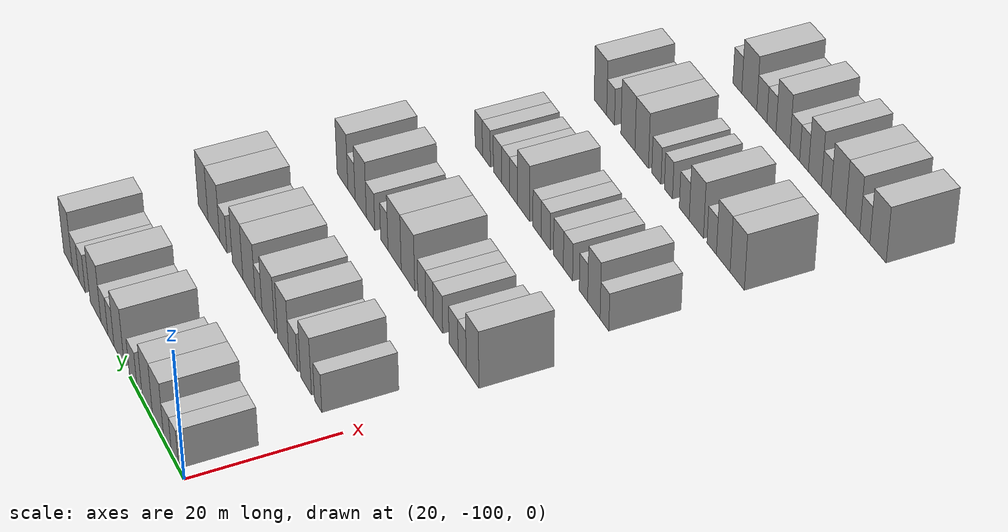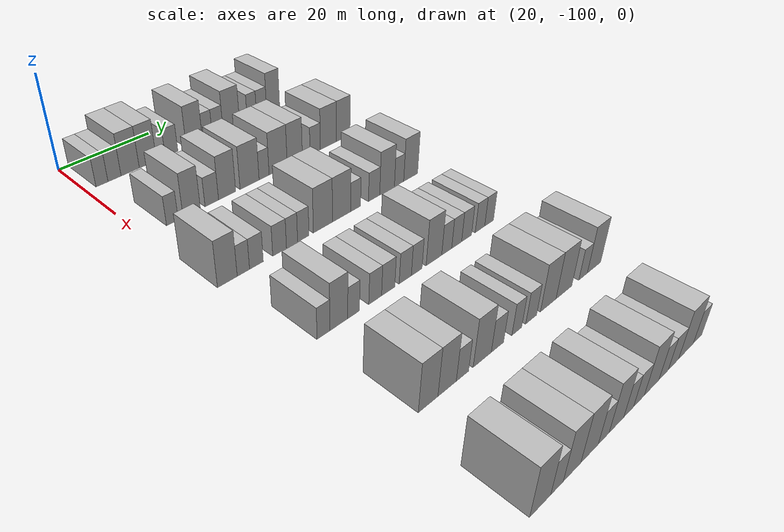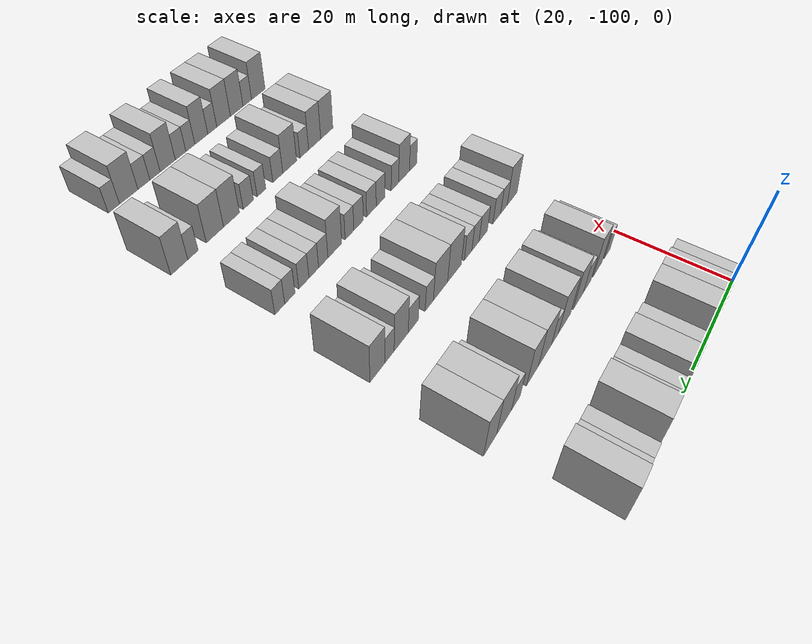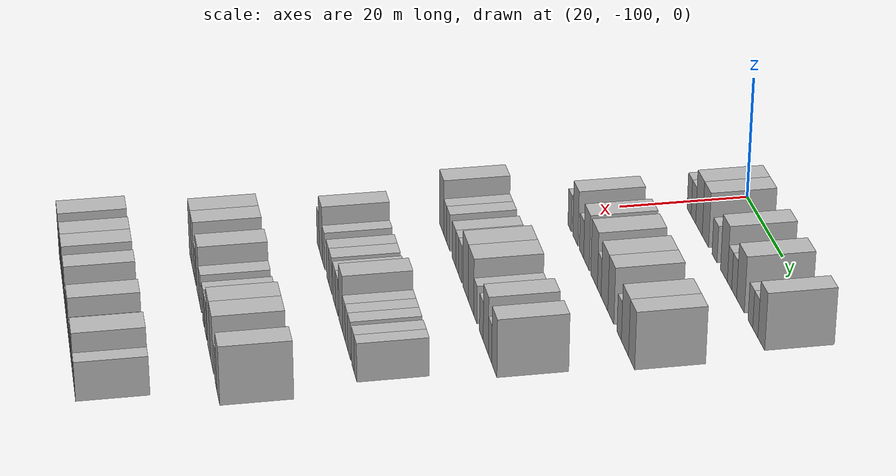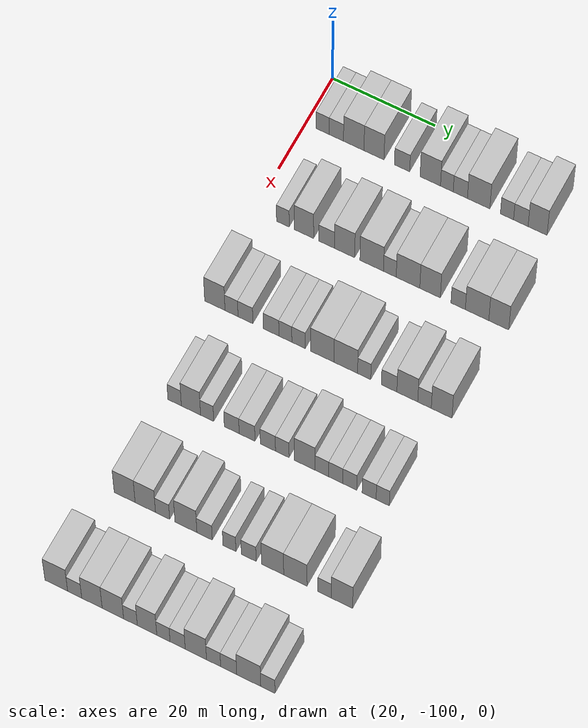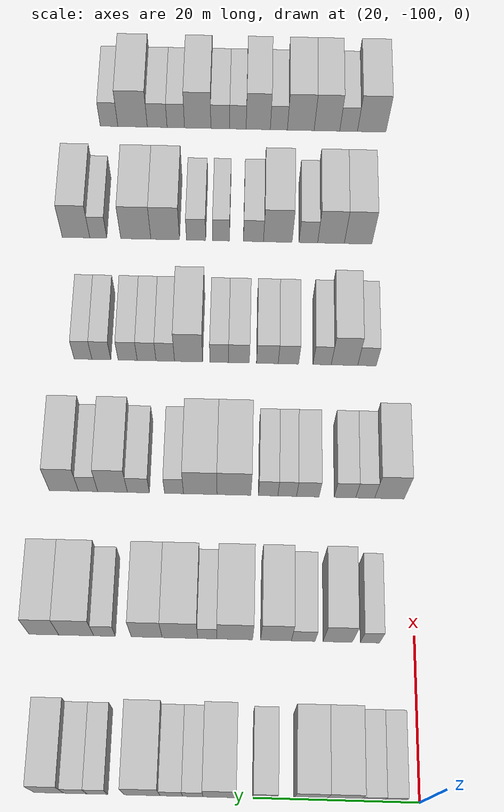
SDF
<sdf version="1.6">
 <world name="default">
  <model name="building_68">
   <static>1</static>
   <pose>25.0000 -96.6909 0 0.000000 0.000000 0.000000</pose>
   <link name="link">
    <pose>0 0 3.00 0 0 0</pose>
    <collision name="collision"><geometry><box><size>10.0000 2.5070 6.0000</size></box></geometry></collision>
    <visual name="visual">
     <cast_shadows>0</cast_shadows>
     <geometry><box><size>10.0000 2.5070 6.0000</size></box></geometry>
     <material>
      <script>
       <uri>model://HANNAS_wall/materials/scripts</uri>
       <uri>model://HANNAS_wall/materials/textures</uri>
       <name>vrc/HANNAS_wall</name>
      </script>
     </material>
    </visual>
   </link>
  </model>
  <model name="building_69">
   <static>1</static>
   <pose>25.0000 -94.0420 0 0.000000 0.000000 0.000000</pose>
   <link name="link">
    <pose>0 0 3.00 0 0 0</pose>
    <collision name="collision"><geometry><box><size>10.0000 2.7907 6.0000</size></box></geometry></collision>
    <visual name="visual">
     <cast_shadows>0</cast_shadows>
     <geometry><box><size>10.0000 2.7907 6.0000</size></box></geometry>
     <material>
      <script>
       <uri>model://HANNAS_wall/materials/scripts</uri>
       <uri>model://HANNAS_wall/materials/textures</uri>
       <name>vrc/HANNAS_wall</name>
      </script>
     </material>
    </visual>
   </link>
  </model>
  <model name="building_70">
   <static>1</static>
   <pose>25.0000 -90.6594 0 0.000000 0.000000 0.000000</pose>
   <link name="link">
    <pose>0 0 4.50 0 0 0</pose>
    <collision name="collision"><geometry><box><size>10.0000 3.9745 9.0000</size></box></geometry></collision>
    <visual name="visual">
     <cast_shadows>0</cast_shadows>
     <geometry><box><size>10.0000 3.9745 9.0000</size></box></geometry>
     <material>
      <script>
       <uri>model://HANNAS_wall/materials/scripts</uri>
       <uri>model://HANNAS_wall/materials/textures</uri>
       <name>vrc/HANNAS_wall</name>
      </script>
     </material>
    </visual>
   </link>
  </model>
  <model name="building_71">
   <static>1</static>
   <pose>25.0000 -86.7366 0 0.000000 0.000000 0.000000</pose>
   <link name="link">
    <pose>0 0 4.50 0 0 0</pose>
    <collision name="collision"><geometry><box><size>10.0000 3.8711 9.0000</size></box></geometry></collision>
    <visual name="visual">
     <cast_shadows>0</cast_shadows>
     <geometry><box><size>10.0000 3.8711 9.0000</size></box></geometry>
     <material>
      <script>
       <uri>model://HANNAS_wall/materials/scripts</uri>
       <uri>model://HANNAS_wall/materials/textures</uri>
       <name>vrc/HANNAS_wall</name>
      </script>
     </material>
    </visual>
   </link>
  </model>
  <model name="building_72">
   <static>1</static>
   <pose>25.0000 -81.3279 0 0.000000 0.000000 0.000000</pose>
   <link name="link">
    <pose>0 0 3.00 0 0 0</pose>
    <collision name="collision"><geometry><box><size>10.0000 2.9462 6.0000</size></box></geometry></collision>
    <visual name="visual">
     <cast_shadows>0</cast_shadows>
     <geometry><box><size>10.0000 2.9462 6.0000</size></box></geometry>
     <material>
      <script>
       <uri>model://HANNAS_wall/materials/scripts</uri>
       <uri>model://HANNAS_wall/materials/textures</uri>
       <name>vrc/HANNAS_wall</name>
      </script>
     </material>
    </visual>
   </link>
  </model>
  <model name="building_73">
   <static>1</static>
   <pose>25.0000 -75.8916 0 0.000000 0.000000 0.000000</pose>
   <link name="link">
    <pose>0 0 4.50 0 0 0</pose>
    <collision name="collision"><geometry><box><size>10.0000 3.9264 9.0000</size></box></geometry></collision>
    <visual name="visual">
     <cast_shadows>0</cast_shadows>
     <geometry><box><size>10.0000 3.9264 9.0000</size></box></geometry>
     <material>
      <script>
       <uri>model://HANNAS_wall/materials/scripts</uri>
       <uri>model://HANNAS_wall/materials/textures</uri>
       <name>vrc/HANNAS_wall</name>
      </script>
     </material>
    </visual>
   </link>
  </model>
  <model name="building_74">
   <static>1</static>
   <pose>25.0000 -72.7085 0 0.000000 0.000000 0.000000</pose>
   <link name="link">
    <pose>0 0 3.00 0 0 0</pose>
    <collision name="collision"><geometry><box><size>10.0000 2.4399 6.0000</size></box></geometry></collision>
    <visual name="visual">
     <cast_shadows>0</cast_shadows>
     <geometry><box><size>10.0000 2.4399 6.0000</size></box></geometry>
     <material>
      <script>
       <uri>model://HANNAS_wall/materials/scripts</uri>
       <uri>model://HANNAS_wall/materials/textures</uri>
       <name>vrc/HANNAS_wall</name>
      </script>
     </material>
    </visual>
   </link>
  </model>
  <model name="building_75">
   <static>1</static>
   <pose>25.0000 -70.1287 0 0.000000 0.000000 0.000000</pose>
   <link name="link">
    <pose>0 0 3.00 0 0 0</pose>
    <collision name="collision"><geometry><box><size>10.0000 2.7196 6.0000</size></box></geometry></collision>
    <visual name="visual">
     <cast_shadows>0</cast_shadows>
     <geometry><box><size>10.0000 2.7196 6.0000</size></box></geometry>
     <material>
      <script>
       <uri>model://HANNAS_wall/materials/scripts</uri>
       <uri>model://HANNAS_wall/materials/textures</uri>
       <name>vrc/HANNAS_wall</name>
      </script>
     </material>
    </visual>
   </link>
  </model>
  <model name="building_76">
   <static>1</static>
   <pose>25.0000 -66.6206 0 0.000000 0.000000 0.000000</pose>
   <link name="link">
    <pose>0 0 4.50 0 0 0</pose>
    <collision name="collision"><geometry><box><size>10.0000 4.2966 9.0000</size></box></geometry></collision>
    <visual name="visual">
     <cast_shadows>0</cast_shadows>
     <geometry><box><size>10.0000 4.2966 9.0000</size></box></geometry>
     <material>
      <script>
       <uri>model://HANNAS_wall/materials/scripts</uri>
       <uri>model://HANNAS_wall/materials/textures</uri>
       <name>vrc/HANNAS_wall</name>
      </script>
     </material>
    </visual>
   </link>
  </model>
  <model name="building_77">
   <static>1</static>
   <pose>25.0000 -61.2124 0 0.000000 0.000000 0.000000</pose>
   <link name="link">
    <pose>0 0 3.00 0 0 0</pose>
    <collision name="collision"><geometry><box><size>10.0000 2.5198 6.0000</size></box></geometry></collision>
    <visual name="visual">
     <cast_shadows>0</cast_shadows>
     <geometry><box><size>10.0000 2.5198 6.0000</size></box></geometry>
     <material>
      <script>
       <uri>model://HANNAS_wall/materials/scripts</uri>
       <uri>model://HANNAS_wall/materials/textures</uri>
       <name>vrc/HANNAS_wall</name>
      </script>
     </material>
    </visual>
   </link>
  </model>
  <model name="building_78">
   <static>1</static>
   <pose>25.0000 -58.5746 0 0.000000 0.000000 0.000000</pose>
   <link name="link">
    <pose>0 0 3.00 0 0 0</pose>
    <collision name="collision"><geometry><box><size>10.0000 2.7558 6.0000</size></box></geometry></collision>
    <visual name="visual">
     <cast_shadows>0</cast_shadows>
     <geometry><box><size>10.0000 2.7558 6.0000</size></box></geometry>
     <material>
      <script>
       <uri>model://HANNAS_wall/materials/scripts</uri>
       <uri>model://HANNAS_wall/materials/textures</uri>
       <name>vrc/HANNAS_wall</name>
      </script>
     </material>
    </visual>
   </link>
  </model>
  <model name="building_79">
   <static>1</static>
   <pose>25.0000 -55.3964 0 0.000000 0.000000 0.000000</pose>
   <link name="link">
    <pose>0 0 4.50 0 0 0</pose>
    <collision name="collision"><geometry><box><size>10.0000 3.6007 9.0000</size></box></geometry></collision>
    <visual name="visual">
     <cast_shadows>0</cast_shadows>
     <geometry><box><size>10.0000 3.6007 9.0000</size></box></geometry>
     <material>
      <script>
       <uri>model://HANNAS_wall/materials/scripts</uri>
       <uri>model://HANNAS_wall/materials/textures</uri>
       <name>vrc/HANNAS_wall</name>
      </script>
     </material>
    </visual>
   </link>
  </model>
  <model name="building_231">
   <static>1</static>
   <pose>44.0000 -94.3785 0 0.000000 0.000000 0.000000</pose>
   <link name="link">
    <pose>0 0 3.00 0 0 0</pose>
    <collision name="collision"><geometry><box><size>10.0000 2.4340 6.0000</size></box></geometry></collision>
    <visual name="visual">
     <cast_shadows>0</cast_shadows>
     <geometry><box><size>10.0000 2.4340 6.0000</size></box></geometry>
     <material>
      <script>
       <uri>model://HANNAS_wall/materials/scripts</uri>
       <uri>model://HANNAS_wall/materials/textures</uri>
       <name>vrc/HANNAS_wall</name>
      </script>
     </material>
    </visual>
   </link>
  </model>
  <model name="building_232">
   <static>1</static>
   <pose>44.0000 -90.3142 0 0.000000 0.000000 0.000000</pose>
   <link name="link">
    <pose>0 0 4.50 0 0 0</pose>
    <collision name="collision"><geometry><box><size>10.0000 3.6946 9.0000</size></box></geometry></collision>
    <visual name="visual">
     <cast_shadows>0</cast_shadows>
     <geometry><box><size>10.0000 3.6946 9.0000</size></box></geometry>
     <material>
      <script>
       <uri>model://HANNAS_wall/materials/scripts</uri>
       <uri>model://HANNAS_wall/materials/textures</uri>
       <name>vrc/HANNAS_wall</name>
      </script>
     </material>
    </visual>
   </link>
  </model>
  <model name="building_233">
   <static>1</static>
   <pose>44.0000 -85.9724 0 0.000000 0.000000 0.000000</pose>
   <link name="link">
    <pose>0 0 3.00 0 0 0</pose>
    <collision name="collision"><geometry><box><size>10.0000 2.9890 6.0000</size></box></geometry></collision>
    <visual name="visual">
     <cast_shadows>0</cast_shadows>
     <geometry><box><size>10.0000 2.9890 6.0000</size></box></geometry>
     <material>
      <script>
       <uri>model://HANNAS_wall/materials/scripts</uri>
       <uri>model://HANNAS_wall/materials/textures</uri>
       <name>vrc/HANNAS_wall</name>
      </script>
     </material>
    </visual>
   </link>
  </model>
  <model name="building_234">
   <static>1</static>
   <pose>44.0000 -82.5346 0 0.000000 0.000000 0.000000</pose>
   <link name="link">
    <pose>0 0 4.50 0 0 0</pose>
    <collision name="collision"><geometry><box><size>10.0000 3.8867 9.0000</size></box></geometry></collision>
    <visual name="visual">
     <cast_shadows>0</cast_shadows>
     <geometry><box><size>10.0000 3.8867 9.0000</size></box></geometry>
     <material>
      <script>
       <uri>model://HANNAS_wall/materials/scripts</uri>
       <uri>model://HANNAS_wall/materials/textures</uri>
       <name>vrc/HANNAS_wall</name>
      </script>
     </material>
    </visual>
   </link>
  </model>
  <model name="building_235">
   <static>1</static>
   <pose>44.0000 -77.3439 0 0.000000 0.000000 0.000000</pose>
   <link name="link">
    <pose>0 0 4.50 0 0 0</pose>
    <collision name="collision"><geometry><box><size>10.0000 4.4946 9.0000</size></box></geometry></collision>
    <visual name="visual">
     <cast_shadows>0</cast_shadows>
     <geometry><box><size>10.0000 4.4946 9.0000</size></box></geometry>
     <material>
      <script>
       <uri>model://HANNAS_wall/materials/scripts</uri>
       <uri>model://HANNAS_wall/materials/textures</uri>
       <name>vrc/HANNAS_wall</name>
      </script>
     </material>
    </visual>
   </link>
  </model>
  <model name="building_236">
   <static>1</static>
   <pose>44.0000 -73.8824 0 0.000000 0.000000 0.000000</pose>
   <link name="link">
    <pose>0 0 3.00 0 0 0</pose>
    <collision name="collision"><geometry><box><size>10.0000 2.4285 6.0000</size></box></geometry></collision>
    <visual name="visual">
     <cast_shadows>0</cast_shadows>
     <geometry><box><size>10.0000 2.4285 6.0000</size></box></geometry>
     <material>
      <script>
       <uri>model://HANNAS_wall/materials/scripts</uri>
       <uri>model://HANNAS_wall/materials/textures</uri>
       <name>vrc/HANNAS_wall</name>
      </script>
     </material>
    </visual>
   </link>
  </model>
  <model name="building_237">
   <static>1</static>
   <pose>44.0000 -70.4236 0 0.000000 0.000000 0.000000</pose>
   <link name="link">
    <pose>0 0 4.50 0 0 0</pose>
    <collision name="collision"><geometry><box><size>10.0000 4.4891 9.0000</size></box></geometry></collision>
    <visual name="visual">
     <cast_shadows>0</cast_shadows>
     <geometry><box><size>10.0000 4.4891 9.0000</size></box></geometry>
     <material>
      <script>
       <uri>model://HANNAS_wall/materials/scripts</uri>
       <uri>model://HANNAS_wall/materials/textures</uri>
       <name>vrc/HANNAS_wall</name>
      </script>
     </material>
    </visual>
   </link>
  </model>
  <model name="building_238">
   <static>1</static>
   <pose>44.0000 -66.2290 0 0.000000 0.000000 0.000000</pose>
   <link name="link">
    <pose>0 0 4.50 0 0 0</pose>
    <collision name="collision"><geometry><box><size>10.0000 3.9001 9.0000</size></box></geometry></collision>
    <visual name="visual">
     <cast_shadows>0</cast_shadows>
     <geometry><box><size>10.0000 3.9001 9.0000</size></box></geometry>
     <material>
      <script>
       <uri>model://HANNAS_wall/materials/scripts</uri>
       <uri>model://HANNAS_wall/materials/textures</uri>
       <name>vrc/HANNAS_wall</name>
      </script>
     </material>
    </visual>
   </link>
  </model>
  <model name="building_239">
   <static>1</static>
   <pose>44.0000 -60.9134 0 0.000000 0.000000 0.000000</pose>
   <link name="link">
    <pose>0 0 3.00 0 0 0</pose>
    <collision name="collision"><geometry><box><size>10.0000 2.7312 6.0000</size></box></geometry></collision>
    <visual name="visual">
     <cast_shadows>0</cast_shadows>
     <geometry><box><size>10.0000 2.7312 6.0000</size></box></geometry>
     <material>
      <script>
       <uri>model://HANNAS_wall/materials/scripts</uri>
       <uri>model://HANNAS_wall/materials/textures</uri>
       <name>vrc/HANNAS_wall</name>
      </script>
     </material>
    </visual>
   </link>
  </model>
  <model name="building_240">
   <static>1</static>
   <pose>44.0000 -57.3329 0 0.000000 0.000000 0.000000</pose>
   <link name="link">
    <pose>0 0 4.50 0 0 0</pose>
    <collision name="collision"><geometry><box><size>10.0000 4.4299 9.0000</size></box></geometry></collision>
    <visual name="visual">
     <cast_shadows>0</cast_shadows>
     <geometry><box><size>10.0000 4.4299 9.0000</size></box></geometry>
     <material>
      <script>
       <uri>model://HANNAS_wall/materials/scripts</uri>
       <uri>model://HANNAS_wall/materials/textures</uri>
       <name>vrc/HANNAS_wall</name>
      </script>
     </material>
    </visual>
   </link>
  </model>
  <model name="building_241">
   <static>1</static>
   <pose>44.0000 -53.2353 0 0.000000 0.000000 0.000000</pose>
   <link name="link">
    <pose>0 0 4.50 0 0 0</pose>
    <collision name="collision"><geometry><box><size>10.0000 3.7652 9.0000</size></box></geometry></collision>
    <visual name="visual">
     <cast_shadows>0</cast_shadows>
     <geometry><box><size>10.0000 3.7652 9.0000</size></box></geometry>
     <material>
      <script>
       <uri>model://HANNAS_wall/materials/scripts</uri>
       <uri>model://HANNAS_wall/materials/textures</uri>
       <name>vrc/HANNAS_wall</name>
      </script>
     </material>
    </visual>
   </link>
  </model>
  <model name="building_397">
   <static>1</static>
   <pose>63.0000 -97.3194 0 0.000000 0.000000 0.000000</pose>
   <link name="link">
    <pose>0 0 4.50 0 0 0</pose>
    <collision name="collision"><geometry><box><size>10.0000 3.8874 9.0000</size></box></geometry></collision>
    <visual name="visual">
     <cast_shadows>0</cast_shadows>
     <geometry><box><size>10.0000 3.8874 9.0000</size></box></geometry>
     <material>
      <script>
       <uri>model://HANNAS_wall/materials/scripts</uri>
       <uri>model://HANNAS_wall/materials/textures</uri>
       <name>vrc/HANNAS_wall</name>
      </script>
     </material>
    </visual>
   </link>
  </model>
  <model name="building_398">
   <static>1</static>
   <pose>63.0000 -94.1287 0 0.000000 0.000000 0.000000</pose>
   <link name="link">
    <pose>0 0 3.00 0 0 0</pose>
    <collision name="collision"><geometry><box><size>10.0000 2.4939 6.0000</size></box></geometry></collision>
    <visual name="visual">
     <cast_shadows>0</cast_shadows>
     <geometry><box><size>10.0000 2.4939 6.0000</size></box></geometry>
     <material>
      <script>
       <uri>model://HANNAS_wall/materials/scripts</uri>
       <uri>model://HANNAS_wall/materials/textures</uri>
       <name>vrc/HANNAS_wall</name>
      </script>
     </material>
    </visual>
   </link>
  </model>
  <model name="building_399">
   <static>1</static>
   <pose>63.0000 -91.4630 0 0.000000 0.000000 0.000000</pose>
   <link name="link">
    <pose>0 0 3.00 0 0 0</pose>
    <collision name="collision"><geometry><box><size>10.0000 2.8375 6.0000</size></box></geometry></collision>
    <visual name="visual">
     <cast_shadows>0</cast_shadows>
     <geometry><box><size>10.0000 2.8375 6.0000</size></box></geometry>
     <material>
      <script>
       <uri>model://HANNAS_wall/materials/scripts</uri>
       <uri>model://HANNAS_wall/materials/textures</uri>
       <name>vrc/HANNAS_wall</name>
      </script>
     </material>
    </visual>
   </link>
  </model>
  <model name="building_400">
   <static>1</static>
   <pose>63.0000 -86.5627 0 0.000000 0.000000 0.000000</pose>
   <link name="link">
    <pose>0 0 3.00 0 0 0</pose>
    <collision name="collision"><geometry><box><size>10.0000 2.9632 6.0000</size></box></geometry></collision>
    <visual name="visual">
     <cast_shadows>0</cast_shadows>
     <geometry><box><size>10.0000 2.9632 6.0000</size></box></geometry>
     <material>
      <script>
       <uri>model://HANNAS_wall/materials/scripts</uri>
       <uri>model://HANNAS_wall/materials/textures</uri>
       <name>vrc/HANNAS_wall</name>
      </script>
     </material>
    </visual>
   </link>
  </model>
  <model name="building_401">
   <static>1</static>
   <pose>63.0000 -83.8507 0 0.000000 0.000000 0.000000</pose>
   <link name="link">
    <pose>0 0 3.00 0 0 0</pose>
    <collision name="collision"><geometry><box><size>10.0000 2.4606 6.0000</size></box></geometry></collision>
    <visual name="visual">
     <cast_shadows>0</cast_shadows>
     <geometry><box><size>10.0000 2.4606 6.0000</size></box></geometry>
     <material>
      <script>
       <uri>model://HANNAS_wall/materials/scripts</uri>
       <uri>model://HANNAS_wall/materials/textures</uri>
       <name>vrc/HANNAS_wall</name>
      </script>
     </material>
    </visual>
   </link>
  </model>
  <model name="building_402">
   <static>1</static>
   <pose>63.0000 -81.3385 0 0.000000 0.000000 0.000000</pose>
   <link name="link">
    <pose>0 0 3.00 0 0 0</pose>
    <collision name="collision"><geometry><box><size>10.0000 2.5638 6.0000</size></box></geometry></collision>
    <visual name="visual">
     <cast_shadows>0</cast_shadows>
     <geometry><box><size>10.0000 2.5638 6.0000</size></box></geometry>
     <material>
      <script>
       <uri>model://HANNAS_wall/materials/scripts</uri>
       <uri>model://HANNAS_wall/materials/textures</uri>
       <name>vrc/HANNAS_wall</name>
      </script>
     </material>
    </visual>
   </link>
  </model>
  <model name="building_403">
   <static>1</static>
   <pose>63.0000 -76.8279 0 0.000000 0.000000 0.000000</pose>
   <link name="link">
    <pose>0 0 4.50 0 0 0</pose>
    <collision name="collision"><geometry><box><size>10.0000 4.4576 9.0000</size></box></geometry></collision>
    <visual name="visual">
     <cast_shadows>0</cast_shadows>
     <geometry><box><size>10.0000 4.4576 9.0000</size></box></geometry>
     <material>
      <script>
       <uri>model://HANNAS_wall/materials/scripts</uri>
       <uri>model://HANNAS_wall/materials/textures</uri>
       <name>vrc/HANNAS_wall</name>
      </script>
     </material>
    </visual>
   </link>
  </model>
  <model name="building_404">
   <static>1</static>
   <pose>63.0000 -72.3817 0 0.000000 0.000000 0.000000</pose>
   <link name="link">
    <pose>0 0 4.50 0 0 0</pose>
    <collision name="collision"><geometry><box><size>10.0000 4.4348 9.0000</size></box></geometry></collision>
    <visual name="visual">
     <cast_shadows>0</cast_shadows>
     <geometry><box><size>10.0000 4.4348 9.0000</size></box></geometry>
     <material>
      <script>
       <uri>model://HANNAS_wall/materials/scripts</uri>
       <uri>model://HANNAS_wall/materials/textures</uri>
       <name>vrc/HANNAS_wall</name>
      </script>
     </material>
    </visual>
   </link>
  </model>
  <model name="building_405">
   <static>1</static>
   <pose>63.0000 -68.9202 0 0.000000 0.000000 0.000000</pose>
   <link name="link">
    <pose>0 0 3.00 0 0 0</pose>
    <collision name="collision"><geometry><box><size>10.0000 2.4882 6.0000</size></box></geometry></collision>
    <visual name="visual">
     <cast_shadows>0</cast_shadows>
     <geometry><box><size>10.0000 2.4882 6.0000</size></box></geometry>
     <material>
      <script>
       <uri>model://HANNAS_wall/materials/scripts</uri>
       <uri>model://HANNAS_wall/materials/textures</uri>
       <name>vrc/HANNAS_wall</name>
      </script>
     </material>
    </visual>
   </link>
  </model>
  <model name="building_406">
   <static>1</static>
   <pose>63.0000 -64.2186 0 0.000000 0.000000 0.000000</pose>
   <link name="link">
    <pose>0 0 3.00 0 0 0</pose>
    <collision name="collision"><geometry><box><size>10.0000 2.9151 6.0000</size></box></geometry></collision>
    <visual name="visual">
     <cast_shadows>0</cast_shadows>
     <geometry><box><size>10.0000 2.9151 6.0000</size></box></geometry>
     <material>
      <script>
       <uri>model://HANNAS_wall/materials/scripts</uri>
       <uri>model://HANNAS_wall/materials/textures</uri>
       <name>vrc/HANNAS_wall</name>
      </script>
     </material>
    </visual>
   </link>
  </model>
  <model name="building_407">
   <static>1</static>
   <pose>63.0000 -60.7985 0 0.000000 0.000000 0.000000</pose>
   <link name="link">
    <pose>0 0 4.50 0 0 0</pose>
    <collision name="collision"><geometry><box><size>10.0000 3.9249 9.0000</size></box></geometry></collision>
    <visual name="visual">
     <cast_shadows>0</cast_shadows>
     <geometry><box><size>10.0000 3.9249 9.0000</size></box></geometry>
     <material>
      <script>
       <uri>model://HANNAS_wall/materials/scripts</uri>
       <uri>model://HANNAS_wall/materials/textures</uri>
       <name>vrc/HANNAS_wall</name>
      </script>
     </material>
    </visual>
   </link>
  </model>
  <model name="building_408">
   <static>1</static>
   <pose>63.0000 -57.5680 0 0.000000 0.000000 0.000000</pose>
   <link name="link">
    <pose>0 0 3.00 0 0 0</pose>
    <collision name="collision"><geometry><box><size>10.0000 2.5362 6.0000</size></box></geometry></collision>
    <visual name="visual">
     <cast_shadows>0</cast_shadows>
     <geometry><box><size>10.0000 2.5362 6.0000</size></box></geometry>
     <material>
      <script>
       <uri>model://HANNAS_wall/materials/scripts</uri>
       <uri>model://HANNAS_wall/materials/textures</uri>
       <name>vrc/HANNAS_wall</name>
      </script>
     </material>
    </visual>
   </link>
  </model>
  <model name="building_409">
   <static>1</static>
   <pose>63.0000 -54.3614 0 0.000000 0.000000 0.000000</pose>
   <link name="link">
    <pose>0 0 4.50 0 0 0</pose>
    <collision name="collision"><geometry><box><size>10.0000 3.8768 9.0000</size></box></geometry></collision>
    <visual name="visual">
     <cast_shadows>0</cast_shadows>
     <geometry><box><size>10.0000 3.8768 9.0000</size></box></geometry>
     <material>
      <script>
       <uri>model://HANNAS_wall/materials/scripts</uri>
       <uri>model://HANNAS_wall/materials/textures</uri>
       <name>vrc/HANNAS_wall</name>
      </script>
     </material>
    </visual>
   </link>
  </model>
  <model name="building_571">
   <static>1</static>
   <pose>82.0000 -94.7240 0 0.000000 0.000000 0.000000</pose>
   <link name="link">
    <pose>0 0 3.00 0 0 0</pose>
    <collision name="collision"><geometry><box><size>10.0000 2.5438 6.0000</size></box></geometry></collision>
    <visual name="visual">
     <cast_shadows>0</cast_shadows>
     <geometry><box><size>10.0000 2.5438 6.0000</size></box></geometry>
     <material>
      <script>
       <uri>model://HANNAS_wall/materials/scripts</uri>
       <uri>model://HANNAS_wall/materials/textures</uri>
       <name>vrc/HANNAS_wall</name>
      </script>
     </material>
    </visual>
   </link>
  </model>
  <model name="building_572">
   <static>1</static>
   <pose>82.0000 -91.6306 0 0.000000 0.000000 0.000000</pose>
   <link name="link">
    <pose>0 0 4.50 0 0 0</pose>
    <collision name="collision"><geometry><box><size>10.0000 3.6430 9.0000</size></box></geometry></collision>
    <visual name="visual">
     <cast_shadows>0</cast_shadows>
     <geometry><box><size>10.0000 3.6430 9.0000</size></box></geometry>
     <material>
      <script>
       <uri>model://HANNAS_wall/materials/scripts</uri>
       <uri>model://HANNAS_wall/materials/textures</uri>
       <name>vrc/HANNAS_wall</name>
      </script>
     </material>
    </visual>
   </link>
  </model>
  <model name="building_573">
   <static>1</static>
   <pose>82.0000 -88.5596 0 0.000000 0.000000 0.000000</pose>
   <link name="link">
    <pose>0 0 3.00 0 0 0</pose>
    <collision name="collision"><geometry><box><size>10.0000 2.4989 6.0000</size></box></geometry></collision>
    <visual name="visual">
     <cast_shadows>0</cast_shadows>
     <geometry><box><size>10.0000 2.4989 6.0000</size></box></geometry>
     <material>
      <script>
       <uri>model://HANNAS_wall/materials/scripts</uri>
       <uri>model://HANNAS_wall/materials/textures</uri>
       <name>vrc/HANNAS_wall</name>
      </script>
     </material>
    </visual>
   </link>
  </model>
  <model name="building_574">
   <static>1</static>
   <pose>82.0000 -83.9074 0 0.000000 0.000000 0.000000</pose>
   <link name="link">
    <pose>0 0 3.00 0 0 0</pose>
    <collision name="collision"><geometry><box><size>10.0000 2.8055 6.0000</size></box></geometry></collision>
    <visual name="visual">
     <cast_shadows>0</cast_shadows>
     <geometry><box><size>10.0000 2.8055 6.0000</size></box></geometry>
     <material>
      <script>
       <uri>model://HANNAS_wall/materials/scripts</uri>
       <uri>model://HANNAS_wall/materials/textures</uri>
       <name>vrc/HANNAS_wall</name>
      </script>
     </material>
    </visual>
   </link>
  </model>
  <model name="building_575">
   <static>1</static>
   <pose>82.0000 -81.0118 0 0.000000 0.000000 0.000000</pose>
   <link name="link">
    <pose>0 0 3.00 0 0 0</pose>
    <collision name="collision"><geometry><box><size>10.0000 2.9856 6.0000</size></box></geometry></collision>
    <visual name="visual">
     <cast_shadows>0</cast_shadows>
     <geometry><box><size>10.0000 2.9856 6.0000</size></box></geometry>
     <material>
      <script>
       <uri>model://HANNAS_wall/materials/scripts</uri>
       <uri>model://HANNAS_wall/materials/textures</uri>
       <name>vrc/HANNAS_wall</name>
      </script>
     </material>
    </visual>
   </link>
  </model>
  <model name="building_576">
   <static>1</static>
   <pose>82.0000 -77.0895 0 0.000000 0.000000 0.000000</pose>
   <link name="link">
    <pose>0 0 3.00 0 0 0</pose>
    <collision name="collision"><geometry><box><size>10.0000 2.8588 6.0000</size></box></geometry></collision>
    <visual name="visual">
     <cast_shadows>0</cast_shadows>
     <geometry><box><size>10.0000 2.8588 6.0000</size></box></geometry>
     <material>
      <script>
       <uri>model://HANNAS_wall/materials/scripts</uri>
       <uri>model://HANNAS_wall/materials/textures</uri>
       <name>vrc/HANNAS_wall</name>
      </script>
     </material>
    </visual>
   </link>
  </model>
  <model name="building_577">
   <static>1</static>
   <pose>82.0000 -74.3811 0 0.000000 0.000000 0.000000</pose>
   <link name="link">
    <pose>0 0 3.00 0 0 0</pose>
    <collision name="collision"><geometry><box><size>10.0000 2.5580 6.0000</size></box></geometry></collision>
    <visual name="visual">
     <cast_shadows>0</cast_shadows>
     <geometry><box><size>10.0000 2.5580 6.0000</size></box></geometry>
     <material>
      <script>
       <uri>model://HANNAS_wall/materials/scripts</uri>
       <uri>model://HANNAS_wall/materials/textures</uri>
       <name>vrc/HANNAS_wall</name>
      </script>
     </material>
    </visual>
   </link>
  </model>
  <model name="building_578">
   <static>1</static>
   <pose>82.0000 -70.1637 0 0.000000 0.000000 0.000000</pose>
   <link name="link">
    <pose>0 0 4.50 0 0 0</pose>
    <collision name="collision"><geometry><box><size>10.0000 3.8769 9.0000</size></box></geometry></collision>
    <visual name="visual">
     <cast_shadows>0</cast_shadows>
     <geometry><box><size>10.0000 3.8769 9.0000</size></box></geometry>
     <material>
      <script>
       <uri>model://HANNAS_wall/materials/scripts</uri>
       <uri>model://HANNAS_wall/materials/textures</uri>
       <name>vrc/HANNAS_wall</name>
      </script>
     </material>
    </visual>
   </link>
  </model>
  <model name="building_579">
   <static>1</static>
   <pose>82.0000 -66.9492 0 0.000000 0.000000 0.000000</pose>
   <link name="link">
    <pose>0 0 3.00 0 0 0</pose>
    <collision name="collision"><geometry><box><size>10.0000 2.5520 6.0000</size></box></geometry></collision>
    <visual name="visual">
     <cast_shadows>0</cast_shadows>
     <geometry><box><size>10.0000 2.5520 6.0000</size></box></geometry>
     <material>
      <script>
       <uri>model://HANNAS_wall/materials/scripts</uri>
       <uri>model://HANNAS_wall/materials/textures</uri>
       <name>vrc/HANNAS_wall</name>
      </script>
     </material>
    </visual>
   </link>
  </model>
  <model name="building_580">
   <static>1</static>
   <pose>82.0000 -64.3773 0 0.000000 0.000000 0.000000</pose>
   <link name="link">
    <pose>0 0 3.00 0 0 0</pose>
    <collision name="collision"><geometry><box><size>10.0000 2.5918 6.0000</size></box></geometry></collision>
    <visual name="visual">
     <cast_shadows>0</cast_shadows>
     <geometry><box><size>10.0000 2.5918 6.0000</size></box></geometry>
     <material>
      <script>
       <uri>model://HANNAS_wall/materials/scripts</uri>
       <uri>model://HANNAS_wall/materials/textures</uri>
       <name>vrc/HANNAS_wall</name>
      </script>
     </material>
    </visual>
   </link>
  </model>
  <model name="building_581">
   <static>1</static>
   <pose>82.0000 -61.7621 0 0.000000 0.000000 0.000000</pose>
   <link name="link">
    <pose>0 0 3.00 0 0 0</pose>
    <collision name="collision"><geometry><box><size>10.0000 2.6387 6.0000</size></box></geometry></collision>
    <visual name="visual">
     <cast_shadows>0</cast_shadows>
     <geometry><box><size>10.0000 2.6387 6.0000</size></box></geometry>
     <material>
      <script>
       <uri>model://HANNAS_wall/materials/scripts</uri>
       <uri>model://HANNAS_wall/materials/textures</uri>
       <name>vrc/HANNAS_wall</name>
      </script>
     </material>
    </visual>
   </link>
  </model>
  <model name="building_582">
   <static>1</static>
   <pose>82.0000 -58.1375 0 0.000000 0.000000 0.000000</pose>
   <link name="link">
    <pose>0 0 3.00 0 0 0</pose>
    <collision name="collision"><geometry><box><size>10.0000 2.6105 6.0000</size></box></geometry></collision>
    <visual name="visual">
     <cast_shadows>0</cast_shadows>
     <geometry><box><size>10.0000 2.6105 6.0000</size></box></geometry>
     <material>
      <script>
       <uri>model://HANNAS_wall/materials/scripts</uri>
       <uri>model://HANNAS_wall/materials/textures</uri>
       <name>vrc/HANNAS_wall</name>
      </script>
     </material>
    </visual>
   </link>
  </model>
  <model name="building_583">
   <static>1</static>
   <pose>82.0000 -55.6046 0 0.000000 0.000000 0.000000</pose>
   <link name="link">
    <pose>0 0 3.00 0 0 0</pose>
    <collision name="collision"><geometry><box><size>10.0000 2.4552 6.0000</size></box></geometry></collision>
    <visual name="visual">
     <cast_shadows>0</cast_shadows>
     <geometry><box><size>10.0000 2.4552 6.0000</size></box></geometry>
     <material>
      <script>
       <uri>model://HANNAS_wall/materials/scripts</uri>
       <uri>model://HANNAS_wall/materials/textures</uri>
       <name>vrc/HANNAS_wall</name>
      </script>
     </material>
    </visual>
   </link>
  </model>
  <model name="building_741">
   <static>1</static>
   <pose>101.0000 -93.8077 0 0.000000 0.000000 0.000000</pose>
   <link name="link">
    <pose>0 0 4.50 0 0 0</pose>
    <collision name="collision"><geometry><box><size>10.0000 3.9441 9.0000</size></box></geometry></collision>
    <visual name="visual">
     <cast_shadows>0</cast_shadows>
     <geometry><box><size>10.0000 3.9441 9.0000</size></box></geometry>
     <material>
      <script>
       <uri>model://HANNAS_wall/materials/scripts</uri>
       <uri>model://HANNAS_wall/materials/textures</uri>
       <name>vrc/HANNAS_wall</name>
      </script>
     </material>
    </visual>
   </link>
  </model>
  <model name="building_742">
   <static>1</static>
   <pose>101.0000 -89.9200 0 0.000000 0.000000 0.000000</pose>
   <link name="link">
    <pose>0 0 4.50 0 0 0</pose>
    <collision name="collision"><geometry><box><size>10.0000 3.8315 9.0000</size></box></geometry></collision>
    <visual name="visual">
     <cast_shadows>0</cast_shadows>
     <geometry><box><size>10.0000 3.8315 9.0000</size></box></geometry>
     <material>
      <script>
       <uri>model://HANNAS_wall/materials/scripts</uri>
       <uri>model://HANNAS_wall/materials/textures</uri>
       <name>vrc/HANNAS_wall</name>
      </script>
     </material>
    </visual>
   </link>
  </model>
  <model name="building_743">
   <static>1</static>
   <pose>101.0000 -86.6721 0 0.000000 0.000000 0.000000</pose>
   <link name="link">
    <pose>0 0 3.00 0 0 0</pose>
    <collision name="collision"><geometry><box><size>10.0000 2.6642 6.0000</size></box></geometry></collision>
    <visual name="visual">
     <cast_shadows>0</cast_shadows>
     <geometry><box><size>10.0000 2.6642 6.0000</size></box></geometry>
     <material>
      <script>
       <uri>model://HANNAS_wall/materials/scripts</uri>
       <uri>model://HANNAS_wall/materials/textures</uri>
       <name>vrc/HANNAS_wall</name>
      </script>
     </material>
    </visual>
   </link>
  </model>
  <model name="building_744">
   <static>1</static>
   <pose>101.0000 -82.2866 0 0.000000 0.000000 0.000000</pose>
   <link name="link">
    <pose>0 0 4.50 0 0 0</pose>
    <collision name="collision"><geometry><box><size>10.0000 4.1069 9.0000</size></box></geometry></collision>
    <visual name="visual">
     <cast_shadows>0</cast_shadows>
     <geometry><box><size>10.0000 4.1069 9.0000</size></box></geometry>
     <material>
      <script>
       <uri>model://HANNAS_wall/materials/scripts</uri>
       <uri>model://HANNAS_wall/materials/textures</uri>
       <name>vrc/HANNAS_wall</name>
      </script>
     </material>
    </visual>
   </link>
  </model>
  <model name="building_745">
   <static>1</static>
   <pose>101.0000 -78.7968 0 0.000000 0.000000 0.000000</pose>
   <link name="link">
    <pose>0 0 3.00 0 0 0</pose>
    <collision name="collision"><geometry><box><size>10.0000 2.8727 6.0000</size></box></geometry></collision>
    <visual name="visual">
     <cast_shadows>0</cast_shadows>
     <geometry><box><size>10.0000 2.8727 6.0000</size></box></geometry>
     <material>
      <script>
       <uri>model://HANNAS_wall/materials/scripts</uri>
       <uri>model://HANNAS_wall/materials/textures</uri>
       <name>vrc/HANNAS_wall</name>
      </script>
     </material>
    </visual>
   </link>
  </model>
  <model name="building_746">
   <static>1</static>
   <pose>101.0000 -74.1536 0 0.000000 0.000000 0.000000</pose>
   <link name="link">
    <pose>0 0 3.00 0 0 0</pose>
    <collision name="collision"><geometry><box><size>10.0000 2.4139 6.0000</size></box></geometry></collision>
    <visual name="visual">
     <cast_shadows>0</cast_shadows>
     <geometry><box><size>10.0000 2.4139 6.0000</size></box></geometry>
     <material>
      <script>
       <uri>model://HANNAS_wall/materials/scripts</uri>
       <uri>model://HANNAS_wall/materials/textures</uri>
       <name>vrc/HANNAS_wall</name>
      </script>
     </material>
    </visual>
   </link>
  </model>
  <model name="building_747">
   <static>1</static>
   <pose>101.0000 -70.5656 0 0.000000 0.000000 0.000000</pose>
   <link name="link">
    <pose>0 0 3.00 0 0 0</pose>
    <collision name="collision"><geometry><box><size>10.0000 2.7620 6.0000</size></box></geometry></collision>
    <visual name="visual">
     <cast_shadows>0</cast_shadows>
     <geometry><box><size>10.0000 2.7620 6.0000</size></box></geometry>
     <material>
      <script>
       <uri>model://HANNAS_wall/materials/scripts</uri>
       <uri>model://HANNAS_wall/materials/textures</uri>
       <name>vrc/HANNAS_wall</name>
      </script>
     </material>
    </visual>
   </link>
  </model>
  <model name="building_748">
   <static>1</static>
   <pose>101.0000 -66.1245 0 0.000000 0.000000 0.000000</pose>
   <link name="link">
    <pose>0 0 4.50 0 0 0</pose>
    <collision name="collision"><geometry><box><size>10.0000 4.1203 9.0000</size></box></geometry></collision>
    <visual name="visual">
     <cast_shadows>0</cast_shadows>
     <geometry><box><size>10.0000 4.1203 9.0000</size></box></geometry>
     <material>
      <script>
       <uri>model://HANNAS_wall/materials/scripts</uri>
       <uri>model://HANNAS_wall/materials/textures</uri>
       <name>vrc/HANNAS_wall</name>
      </script>
     </material>
    </visual>
   </link>
  </model>
  <model name="building_749">
   <static>1</static>
   <pose>101.0000 -61.8988 0 0.000000 0.000000 0.000000</pose>
   <link name="link">
    <pose>0 0 4.50 0 0 0</pose>
    <collision name="collision"><geometry><box><size>10.0000 4.3311 9.0000</size></box></geometry></collision>
    <visual name="visual">
     <cast_shadows>0</cast_shadows>
     <geometry><box><size>10.0000 4.3311 9.0000</size></box></geometry>
     <material>
      <script>
       <uri>model://HANNAS_wall/materials/scripts</uri>
       <uri>model://HANNAS_wall/materials/textures</uri>
       <name>vrc/HANNAS_wall</name>
      </script>
     </material>
    </visual>
   </link>
  </model>
  <model name="building_750">
   <static>1</static>
   <pose>101.0000 -56.5040 0 0.000000 0.000000 0.000000</pose>
   <link name="link">
    <pose>0 0 3.00 0 0 0</pose>
    <collision name="collision"><geometry><box><size>10.0000 2.4585 6.0000</size></box></geometry></collision>
    <visual name="visual">
     <cast_shadows>0</cast_shadows>
     <geometry><box><size>10.0000 2.4585 6.0000</size></box></geometry>
     <material>
      <script>
       <uri>model://HANNAS_wall/materials/scripts</uri>
       <uri>model://HANNAS_wall/materials/textures</uri>
       <name>vrc/HANNAS_wall</name>
      </script>
     </material>
    </visual>
   </link>
  </model>
  <model name="building_751">
   <static>1</static>
   <pose>101.0000 -53.2977 0 0.000000 0.000000 0.000000</pose>
   <link name="link">
    <pose>0 0 4.50 0 0 0</pose>
    <collision name="collision"><geometry><box><size>10.0000 3.9542 9.0000</size></box></geometry></collision>
    <visual name="visual">
     <cast_shadows>0</cast_shadows>
     <geometry><box><size>10.0000 3.9542 9.0000</size></box></geometry>
     <material>
      <script>
       <uri>model://HANNAS_wall/materials/scripts</uri>
       <uri>model://HANNAS_wall/materials/textures</uri>
       <name>vrc/HANNAS_wall</name>
      </script>
     </material>
    </visual>
   </link>
  </model>
  <model name="building_916">
   <static>1</static>
   <pose>120.0000 -96.1420 0 0.000000 0.000000 0.000000</pose>
   <link name="link">
    <pose>0 0 4.50 0 0 0</pose>
    <collision name="collision"><geometry><box><size>10.0000 4.2506 9.0000</size></box></geometry></collision>
    <visual name="visual">
     <cast_shadows>0</cast_shadows>
     <geometry><box><size>10.0000 4.2506 9.0000</size></box></geometry>
     <material>
      <script>
       <uri>model://HANNAS_wall/materials/scripts</uri>
       <uri>model://HANNAS_wall/materials/textures</uri>
       <name>vrc/HANNAS_wall</name>
      </script>
     </material>
    </visual>
   </link>
  </model>
  <model name="building_917">
   <static>1</static>
   <pose>120.0000 -92.6971 0 0.000000 0.000000 0.000000</pose>
   <link name="link">
    <pose>0 0 3.00 0 0 0</pose>
    <collision name="collision"><geometry><box><size>10.0000 2.6394 6.0000</size></box></geometry></collision>
    <visual name="visual">
     <cast_shadows>0</cast_shadows>
     <geometry><box><size>10.0000 2.6394 6.0000</size></box></geometry>
     <material>
      <script>
       <uri>model://HANNAS_wall/materials/scripts</uri>
       <uri>model://HANNAS_wall/materials/textures</uri>
       <name>vrc/HANNAS_wall</name>
      </script>
     </material>
    </visual>
   </link>
  </model>
  <model name="building_918">
   <static>1</static>
   <pose>120.0000 -89.4652 0 0.000000 0.000000 0.000000</pose>
   <link name="link">
    <pose>0 0 4.50 0 0 0</pose>
    <collision name="collision"><geometry><box><size>10.0000 3.8245 9.0000</size></box></geometry></collision>
    <visual name="visual">
     <cast_shadows>0</cast_shadows>
     <geometry><box><size>10.0000 3.8245 9.0000</size></box></geometry>
     <material>
      <script>
       <uri>model://HANNAS_wall/materials/scripts</uri>
       <uri>model://HANNAS_wall/materials/textures</uri>
       <name>vrc/HANNAS_wall</name>
      </script>
     </material>
    </visual>
   </link>
  </model>
  <model name="building_919">
   <static>1</static>
   <pose>120.0000 -85.5578 0 0.000000 0.000000 0.000000</pose>
   <link name="link">
    <pose>0 0 4.50 0 0 0</pose>
    <collision name="collision"><geometry><box><size>10.0000 3.9902 9.0000</size></box></geometry></collision>
    <visual name="visual">
     <cast_shadows>0</cast_shadows>
     <geometry><box><size>10.0000 3.9902 9.0000</size></box></geometry>
     <material>
      <script>
       <uri>model://HANNAS_wall/materials/scripts</uri>
       <uri>model://HANNAS_wall/materials/textures</uri>
       <name>vrc/HANNAS_wall</name>
      </script>
     </material>
    </visual>
   </link>
  </model>
  <model name="building_920">
   <static>1</static>
   <pose>120.0000 -82.2864 0 0.000000 0.000000 0.000000</pose>
   <link name="link">
    <pose>0 0 3.00 0 0 0</pose>
    <collision name="collision"><geometry><box><size>10.0000 2.5526 6.0000</size></box></geometry></collision>
    <visual name="visual">
     <cast_shadows>0</cast_shadows>
     <geometry><box><size>10.0000 2.5526 6.0000</size></box></geometry>
     <material>
      <script>
       <uri>model://HANNAS_wall/materials/scripts</uri>
       <uri>model://HANNAS_wall/materials/textures</uri>
       <name>vrc/HANNAS_wall</name>
      </script>
     </material>
    </visual>
   </link>
  </model>
  <model name="building_921">
   <static>1</static>
   <pose>120.0000 -79.2046 0 0.000000 0.000000 0.000000</pose>
   <link name="link">
    <pose>0 0 4.50 0 0 0</pose>
    <collision name="collision"><geometry><box><size>10.0000 3.6112 9.0000</size></box></geometry></collision>
    <visual name="visual">
     <cast_shadows>0</cast_shadows>
     <geometry><box><size>10.0000 3.6112 9.0000</size></box></geometry>
     <material>
      <script>
       <uri>model://HANNAS_wall/materials/scripts</uri>
       <uri>model://HANNAS_wall/materials/textures</uri>
       <name>vrc/HANNAS_wall</name>
      </script>
     </material>
    </visual>
   </link>
  </model>
  <model name="building_922">
   <static>1</static>
   <pose>120.0000 -76.1685 0 0.000000 0.000000 0.000000</pose>
   <link name="link">
    <pose>0 0 3.00 0 0 0</pose>
    <collision name="collision"><geometry><box><size>10.0000 2.4609 6.0000</size></box></geometry></collision>
    <visual name="visual">
     <cast_shadows>0</cast_shadows>
     <geometry><box><size>10.0000 2.4609 6.0000</size></box></geometry>
     <material>
      <script>
       <uri>model://HANNAS_wall/materials/scripts</uri>
       <uri>model://HANNAS_wall/materials/textures</uri>
       <name>vrc/HANNAS_wall</name>
      </script>
     </material>
    </visual>
   </link>
  </model>
  <model name="building_923">
   <static>1</static>
   <pose>120.0000 -73.5350 0 0.000000 0.000000 0.000000</pose>
   <link name="link">
    <pose>0 0 3.00 0 0 0</pose>
    <collision name="collision"><geometry><box><size>10.0000 2.8061 6.0000</size></box></geometry></collision>
    <visual name="visual">
     <cast_shadows>0</cast_shadows>
     <geometry><box><size>10.0000 2.8061 6.0000</size></box></geometry>
     <material>
      <script>
       <uri>model://HANNAS_wall/materials/scripts</uri>
       <uri>model://HANNAS_wall/materials/textures</uri>
       <name>vrc/HANNAS_wall</name>
      </script>
     </material>
    </visual>
   </link>
  </model>
  <model name="building_924">
   <static>1</static>
   <pose>120.0000 -70.1644 0 0.000000 0.000000 0.000000</pose>
   <link name="link">
    <pose>0 0 4.50 0 0 0</pose>
    <collision name="collision"><geometry><box><size>10.0000 3.9350 9.0000</size></box></geometry></collision>
    <visual name="visual">
     <cast_shadows>0</cast_shadows>
     <geometry><box><size>10.0000 3.9350 9.0000</size></box></geometry>
     <material>
      <script>
       <uri>model://HANNAS_wall/materials/scripts</uri>
       <uri>model://HANNAS_wall/materials/textures</uri>
       <name>vrc/HANNAS_wall</name>
      </script>
     </material>
    </visual>
   </link>
  </model>
  <model name="building_925">
   <static>1</static>
   <pose>120.0000 -66.8934 0 0.000000 0.000000 0.000000</pose>
   <link name="link">
    <pose>0 0 3.00 0 0 0</pose>
    <collision name="collision"><geometry><box><size>10.0000 2.6068 6.0000</size></box></geometry></collision>
    <visual name="visual">
     <cast_shadows>0</cast_shadows>
     <geometry><box><size>10.0000 2.6068 6.0000</size></box></geometry>
     <material>
      <script>
       <uri>model://HANNAS_wall/materials/scripts</uri>
       <uri>model://HANNAS_wall/materials/textures</uri>
       <name>vrc/HANNAS_wall</name>
      </script>
     </material>
    </visual>
   </link>
  </model>
  <model name="building_926">
   <static>1</static>
   <pose>120.0000 -64.1142 0 0.000000 0.000000 0.000000</pose>
   <link name="link">
    <pose>0 0 3.00 0 0 0</pose>
    <collision name="collision"><geometry><box><size>10.0000 2.9515 6.0000</size></box></geometry></collision>
    <visual name="visual">
     <cast_shadows>0</cast_shadows>
     <geometry><box><size>10.0000 2.9515 6.0000</size></box></geometry>
     <material>
      <script>
       <uri>model://HANNAS_wall/materials/scripts</uri>
       <uri>model://HANNAS_wall/materials/textures</uri>
       <name>vrc/HANNAS_wall</name>
      </script>
     </material>
    </visual>
   </link>
  </model>
  <model name="building_927">
   <static>1</static>
   <pose>120.0000 -60.4313 0 0.000000 0.000000 0.000000</pose>
   <link name="link">
    <pose>0 0 4.50 0 0 0</pose>
    <collision name="collision"><geometry><box><size>10.0000 4.4143 9.0000</size></box></geometry></collision>
    <visual name="visual">
     <cast_shadows>0</cast_shadows>
     <geometry><box><size>10.0000 4.4143 9.0000</size></box></geometry>
     <material>
      <script>
       <uri>model://HANNAS_wall/materials/scripts</uri>
       <uri>model://HANNAS_wall/materials/textures</uri>
       <name>vrc/HANNAS_wall</name>
      </script>
     </material>
    </visual>
   </link>
  </model>
  <model name="building_928">
   <static>1</static>
   <pose>120.0000 -56.9101 0 0.000000 0.000000 0.000000</pose>
   <link name="link">
    <pose>0 0 3.00 0 0 0</pose>
    <collision name="collision"><geometry><box><size>10.0000 2.6281 6.0000</size></box></geometry></collision>
    <visual name="visual">
     <cast_shadows>0</cast_shadows>
     <geometry><box><size>10.0000 2.6281 6.0000</size></box></geometry>
     <material>
      <script>
       <uri>model://HANNAS_wall/materials/scripts</uri>
       <uri>model://HANNAS_wall/materials/textures</uri>
       <name>vrc/HANNAS_wall</name>
      </script>
     </material>
    </visual>
   </link>
  </model>
 </world>
</sdf>
